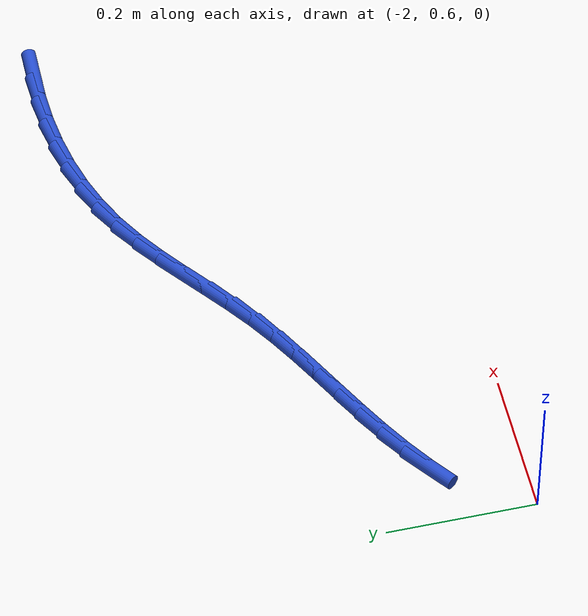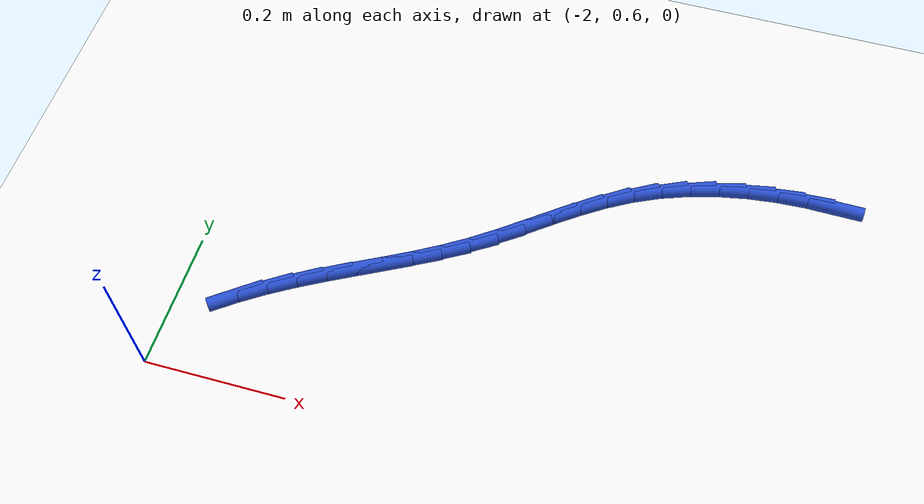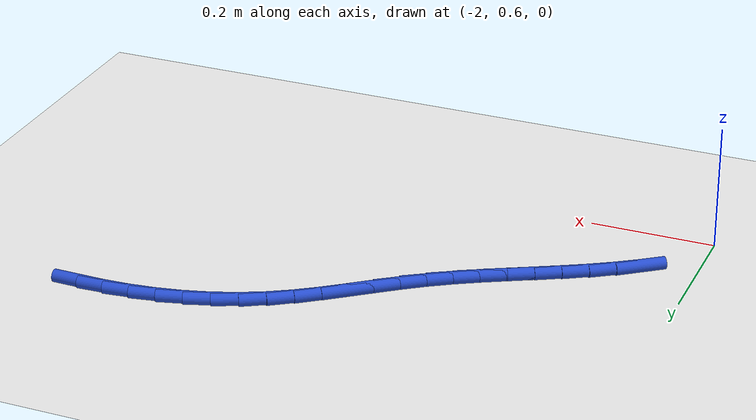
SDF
<sdf version="1.6">
 <world name="default">
  <model name="ground_plane">
   <static>1</static>
   <link name="link">
    <collision name="collision">
     <geometry><plane><normal>0 0 1</normal><size>100 100</size></plane></geometry>
     <surface><friction><ode><mu>100</mu><mu2>50</mu2></ode></friction></surface>
    </collision>
    <visual name="visual">
     <cast_shadows>0</cast_shadows>
     <geometry><plane><normal>0 0 1</normal><size>100 100</size></plane></geometry>
     <material>
      <script><uri>file://media/materials/scripts/gazebo.material</uri><name>Gazebo/WhiteGlow</name></script>
     </material>
    </visual>
   </link>
  </model>
  <model name="line">
   <link name="link_41">
    <pose>-1.1469092157805925 1.089640856944916 0.01 0 1.57 -0.016629225076414005</pose>
    <collision name="collision">
     <geometry><cylinder><radius>0.01</radius><length>0.08</length></cylinder></geometry>
    </collision>
    <visual name="visual">
     <material>
      <script><name>Gazebo/Blue</name><uri>file://media/materials/scripts/gazebo.material</uri></script>
     </material>
     <geometry><cylinder><radius>0.01</radius><length>0.08</length></cylinder></geometry>
    </visual>
   </link>
   <link name="link_42">
    <pose>-1.1895993296146534 1.0903508259004453 0.01 0 1.57 0.049845544423002396</pose>
    <collision name="collision">
     <geometry><cylinder><radius>0.01</radius><length>0.08</length></cylinder></geometry>
    </collision>
    <visual name="visual">
     <material>
      <script><name>Gazebo/Blue</name><uri>file://media/materials/scripts/gazebo.material</uri></script>
     </material>
     <geometry><cylinder><radius>0.01</radius><length>0.08</length></cylinder></geometry>
    </visual>
   </link>
   <link name="link_43">
    <pose>-1.2320550179490515 1.0882328446141687 0.01 0 1.57 0.1192797371865166</pose>
    <collision name="collision">
     <geometry><cylinder><radius>0.01</radius><length>0.08</length></cylinder></geometry>
    </collision>
    <visual name="visual">
     <material>
      <script><name>Gazebo/Blue</name><uri>file://media/materials/scripts/gazebo.material</uri></script>
     </material>
     <geometry><cylinder><radius>0.01</radius><length>0.08</length></cylinder></geometry>
    </visual>
   </link>
   <link name="link_44">
    <pose>-1.2740003355573066 1.0832057542724478 0.01 0 1.57 0.192380875098213</pose>
    <collision name="collision">
     <geometry><cylinder><radius>0.01</radius><length>0.08</length></cylinder></geometry>
    </collision>
    <visual name="visual">
     <material>
      <script><name>Gazebo/Blue</name><uri>file://media/materials/scripts/gazebo.material</uri></script>
     </material>
     <geometry><cylinder><radius>0.01</radius><length>0.08</length></cylinder></geometry>
    </visual>
   </link>
   <link name="link_45">
    <pose>-1.3151593372129404 1.075188396061644 0.01 0 1.57 0.26980738724072</pose>
    <collision name="collision">
     <geometry><cylinder><radius>0.01</radius><length>0.08</length></cylinder></geometry>
    </collision>
    <visual name="visual">
     <material>
      <script><name>Gazebo/Blue</name><uri>file://media/materials/scripts/gazebo.material</uri></script>
     </material>
     <geometry><cylinder><radius>0.01</radius><length>0.08</length></cylinder></geometry>
    </visual>
   </link>
   <link name="link_46">
    <pose>-1.3552560776894713 1.0640996111681182 0.01 0 1.57 0.35212482222239866</pose>
    <collision name="collision">
     <geometry><cylinder><radius>0.01</radius><length>0.08</length></cylinder></geometry>
    </collision>
    <visual name="visual">
     <material>
      <script><name>Gazebo/Blue</name><uri>file://media/materials/scripts/gazebo.material</uri></script>
     </material>
     <geometry><cylinder><radius>0.01</radius><length>0.08</length></cylinder></geometry>
    </visual>
   </link>
   <link name="link_47">
    <pose>-1.3940146117604215 1.0498582407782322 0.01 0 1.57 0.4397413068819108</pose>
    <collision name="collision">
     <geometry><cylinder><radius>0.01</radius><length>0.08</length></cylinder></geometry>
    </collision>
    <visual name="visual">
     <material>
      <script><name>Gazebo/Blue</name><uri>file://media/materials/scripts/gazebo.material</uri></script>
     </material>
     <geometry><cylinder><radius>0.01</radius><length>0.08</length></cylinder></geometry>
    </visual>
   </link>
   <link name="link_48">
    <pose>-1.4311589941993095 1.0323831260783467 0.01 0 1.57 0.529278528474185</pose>
    <collision name="collision">
     <geometry><cylinder><radius>0.01</radius><length>0.08</length></cylinder></geometry>
    </collision>
    <visual name="visual">
     <material>
      <script><name>Gazebo/Blue</name><uri>file://media/materials/scripts/gazebo.material</uri></script>
     </material>
     <geometry><cylinder><radius>0.01</radius><length>0.08</length></cylinder></geometry>
    </visual>
   </link>
   <link name="link_49">
    <pose>-1.4665048682250175 1.0117076182102842 0.01 0 1.57 0.6000278033007083</pose>
    <collision name="collision">
     <geometry><cylinder><radius>0.01</radius><length>0.08</length></cylinder></geometry>
    </collision>
    <visual name="visual">
     <material>
      <script><name>Gazebo/Blue</name><uri>file://media/materials/scripts/gazebo.material</uri></script>
     </material>
     <geometry><cylinder><radius>0.01</radius><length>0.08</length></cylinder></geometry>
    </visual>
   </link>
   <link name="link_50">
    <pose>-1.5003932609493436 0.9885219381419786 0.01 0 1.57 0.6445224519959704</pose>
    <collision name="collision">
     <geometry><cylinder><radius>0.01</radius><length>0.08</length></cylinder></geometry>
    </collision>
    <visual name="visual">
     <material>
      <script><name>Gazebo/Blue</name><uri>file://media/materials/scripts/gazebo.material</uri></script>
     </material>
     <geometry><cylinder><radius>0.01</radius><length>0.08</length></cylinder></geometry>
    </visual>
   </link>
   <link name="link_51">
    <pose>-1.5333521943705068 0.9637501002640098 0.01 0 1.57 0.6631643925983046</pose>
    <collision name="collision">
     <geometry><cylinder><radius>0.01</radius><length>0.08</length></cylinder></geometry>
    </collision>
    <visual name="visual">
     <material>
      <script><name>Gazebo/Blue</name><uri>file://media/materials/scripts/gazebo.material</uri></script>
     </material>
     <geometry><cylinder><radius>0.01</radius><length>0.08</length></cylinder></geometry>
    </visual>
   </link>
   <link name="link_52">
    <pose>-1.5659099174969364 0.9383164027901909 0.01 0 1.57 0.6562553935677533</pose>
    <collision name="collision">
     <geometry><cylinder><radius>0.01</radius><length>0.08</length></cylinder></geometry>
    </collision>
    <visual name="visual">
     <material>
      <script><name>Gazebo/Blue</name><uri>file://media/materials/scripts/gazebo.material</uri></script>
     </material>
     <geometry><cylinder><radius>0.01</radius><length>0.08</length></cylinder></geometry>
    </visual>
   </link>
   <link name="link_53">
    <pose>-1.5985946793370591 0.9131451439343354 0.01 0 1.57 0.6236216678948734</pose>
    <collision name="collision">
     <geometry><cylinder><radius>0.01</radius><length>0.08</length></cylinder></geometry>
    </collision>
    <visual name="visual">
     <material>
      <script><name>Gazebo/Blue</name><uri>file://media/materials/scripts/gazebo.material</uri></script>
     </material>
     <geometry><cylinder><radius>0.01</radius><length>0.08</length></cylinder></geometry>
    </visual>
   </link>
   <link name="link_54">
    <pose>-1.631934728899303 0.8891606219102567 0.01 0 1.57 0.5705331269557472</pose>
    <collision name="collision">
     <geometry><cylinder><radius>0.01</radius><length>0.08</length></cylinder></geometry>
    </collision>
    <visual name="visual">
     <material>
      <script><name>Gazebo/Blue</name><uri>file://media/materials/scripts/gazebo.material</uri></script>
     </material>
     <geometry><cylinder><radius>0.01</radius><length>0.08</length></cylinder></geometry>
    </visual>
   </link>
   <link name="link_55">
    <pose>-1.6663455886523997 0.8670784517453487 0.01 0 1.57 0.5250505709806931</pose>
    <collision name="collision">
     <geometry><cylinder><radius>0.01</radius><length>0.08</length></cylinder></geometry>
    </collision>
    <visual name="visual">
     <material>
      <script><name>Gazebo/Blue</name><uri>file://media/materials/scripts/gazebo.material</uri></script>
     </material>
     <geometry><cylinder><radius>0.01</radius><length>0.08</length></cylinder></geometry>
    </visual>
   </link>
   <link name="link_56">
    <pose>-1.7016953282033824 0.8466007851964921 0.01 0 1.57 0.49606289201374787</pose>
    <collision name="collision">
     <geometry><cylinder><radius>0.01</radius><length>0.08</length></cylinder></geometry>
    </collision>
    <visual name="visual">
     <material>
      <script><name>Gazebo/Blue</name><uri>file://media/materials/scripts/gazebo.material</uri></script>
     </material>
     <geometry><cylinder><radius>0.01</radius><length>0.08</length></cylinder></geometry>
    </visual>
   </link>
   <link name="link_57">
    <pose>-1.737686062270652 0.8271225527126526 0.01 0 1.57 0.4836344355855861</pose>
    <collision name="collision">
     <geometry><cylinder><radius>0.01</radius><length>0.08</length></cylinder></geometry>
    </collision>
    <visual name="visual">
     <material>
      <script><name>Gazebo/Blue</name><uri>file://media/materials/scripts/gazebo.material</uri></script>
     </material>
     <geometry><cylinder><radius>0.01</radius><length>0.08</length></cylinder></geometry>
    </visual>
   </link>
   <link name="link_58">
    <pose>-1.7740198685943398 0.8080386162873745 0.01 0 1.57 0.48765750594170243</pose>
    <collision name="collision">
     <geometry><cylinder><radius>0.01</radius><length>0.08</length></cylinder></geometry>
    </collision>
    <visual name="visual">
     <material>
      <script><name>Gazebo/Blue</name><uri>file://media/materials/scripts/gazebo.material</uri></script>
     </material>
     <geometry><cylinder><radius>0.01</radius><length>0.08</length></cylinder></geometry>
    </visual>
   </link>
   <link name="link_59">
    <pose>-1.810398824914579 0.7887438379142044 0.01 0 1.57 0.5079580619278099</pose>
    <collision name="collision">
     <geometry><cylinder><radius>0.01</radius><length>0.08</length></cylinder></geometry>
    </collision>
    <visual name="visual">
     <material>
      <script><name>Gazebo/Blue</name><uri>file://media/materials/scripts/gazebo.material</uri></script>
     </material>
     <geometry><cylinder><radius>0.01</radius><length>0.08</length></cylinder></geometry>
    </visual>
   </link>
   <link name="link_60">
    <pose>-1.8465250089715013 0.7686330795866873 0.01 0 1.57 0.5442669717111053</pose>
    <collision name="collision">
     <geometry><cylinder><radius>0.01</radius><length>0.08</length></cylinder></geometry>
    </collision>
    <visual name="visual">
     <material>
      <script><name>Gazebo/Blue</name><uri>file://media/materials/scripts/gazebo.material</uri></script>
     </material>
     <geometry><cylinder><radius>0.01</radius><length>0.08</length></cylinder></geometry>
    </visual>
   </link>
   <link name="link_61">
    <pose>-1.8821004985052403 0.7471012032983684 0.01 0 1.57 0.5942408515598054</pose>
    <collision name="collision">
     <geometry><cylinder><radius>0.01</radius><length>0.08</length></cylinder></geometry>
    </collision>
    <visual name="visual">
     <material>
      <script><name>Gazebo/Blue</name><uri>file://media/materials/scripts/gazebo.material</uri></script>
     </material>
     <geometry><cylinder><radius>0.01</radius><length>0.08</length></cylinder></geometry>
    </visual>
   </link>
   <link name="link_62">
    <pose>-1.9168458789549185 0.723623220968672 0.01 0 1.57 0.6465886437620075</pose>
    <collision name="collision">
     <geometry><cylinder><radius>0.01</radius><length>0.08</length></cylinder></geometry>
    </collision>
    <visual name="visual">
     <material>
      <script><name>Gazebo/Blue</name><uri>file://media/materials/scripts/gazebo.material</uri></script>
     </material>
     <geometry><cylinder><radius>0.01</radius><length>0.08</length></cylinder></geometry>
    </visual>
   </link>
  </model>
 </world>
</sdf>
